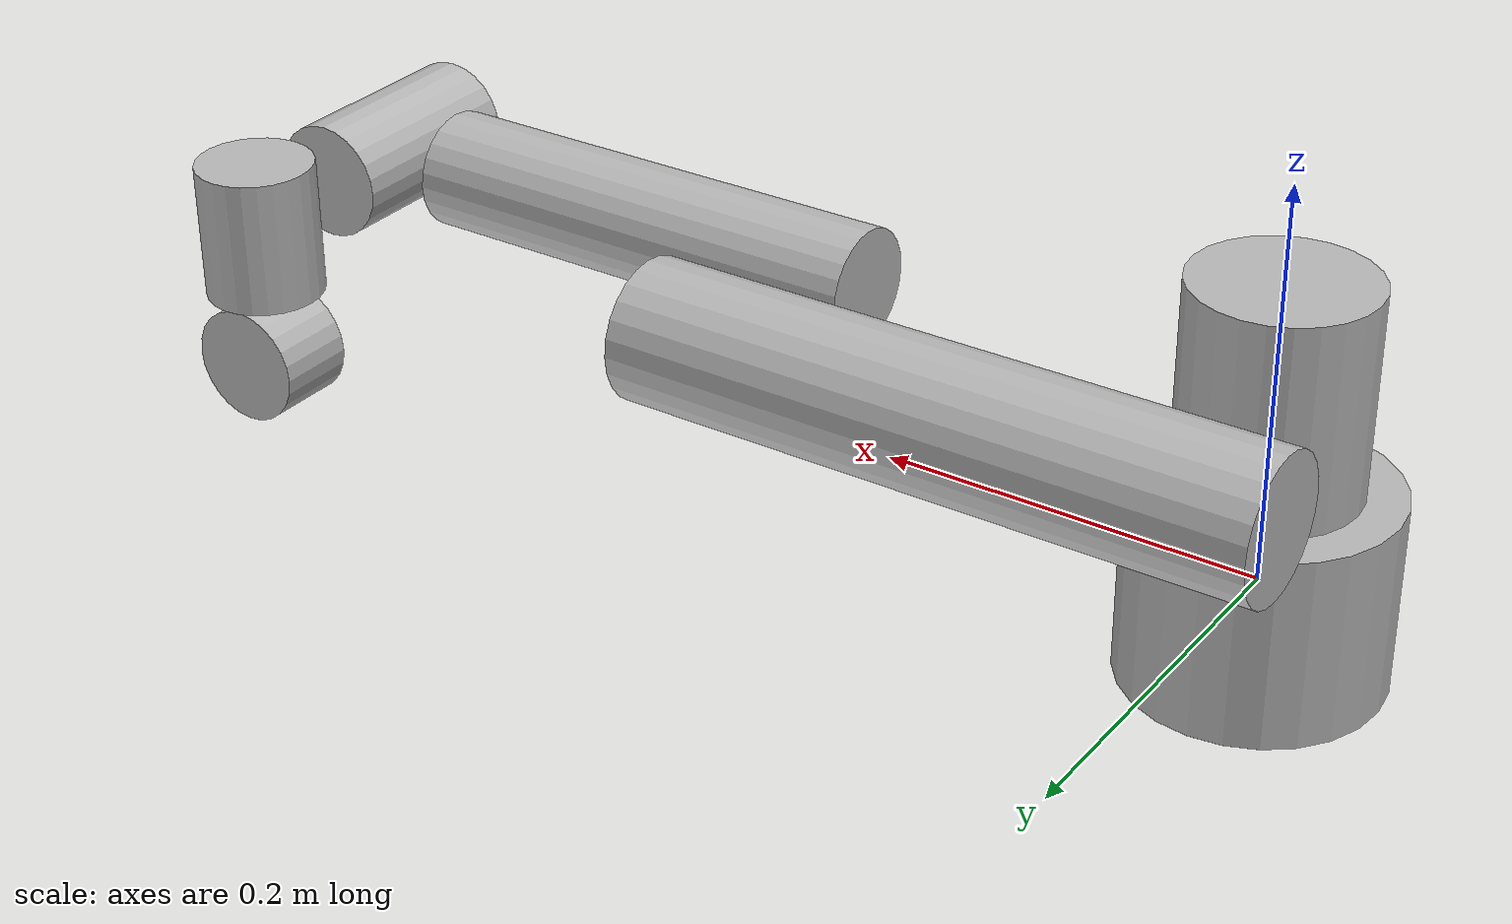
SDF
<sdf version="1.6">
		<model name="ur3e_gripper">
			<self_collide>true</self_collide>
			<pose>0.0 0.0 0.0 0.0 0.0 0.0</pose>

			<link name="1-base_link">
					<pose>0.0 0.0 0.0 0.0 0.0 3.1414999961853027</pose>
					<inertial>
						<pose>0.0 0.0 0.0 0.0 0.0 0.0</pose>
						<inertia>
							<ixx>1.0</ixx>
							<ixy>0.0</ixy>
							<ixz>0.0</ixz>
							<iyy>1.0</iyy>
							<iyz>0.0</iyz>
							<izz>1.0</izz>
						</inertia>
						<mass>2.4000000953674316</mass>
					</inertial>

					<collision name="1--base_link_collision">
						<laser_retro>0.0</laser_retro>
						<pose>0.0 0.0 0.0 0.0 0.0 0.0</pose>
						<geometry>
							<cylinder>
								<radius>0.06499999761581421</radius>
								<length>0.09880000352859497</length>
							</cylinder>
						</geometry>
						</collision>
					<visual name="1--base_link_collision">
						<laser_retro>0.0</laser_retro>
						<pose>0.0 0.0 0.0 0.0 0.0 0.0</pose>
						<geometry>
							<cylinder>
								<radius>0.06499999761581421</radius>
								<length>0.09880000352859497</length>
							</cylinder>
						</geometry>
						</visual>
					 If you wish to reflect these aspects in SDF,
					     please add an appropriate annotation to the sensor. --&gt;
					 If you wish to reflect these aspects in SDF,
					     please add an appropriate annotation to the sensor. --&gt;
					 If you wish to reflect these aspects in SDF,
					     please add an appropriate annotation to the sensor. --&gt;
					 If you wish to reflect these aspects in SDF,
					     please add an appropriate annotation to the sensor. --&gt;
			</link>

			<link name="2-shoulder_link">
					<pose>0.0 0.0 0.09880000352859497 0.0 0.0 0.0</pose>
					<inertial>
						<pose>0.0 0.0 -0.019999999552965164 0.0 0.0 0.0</pose>
						<inertia>
							<ixx>1.0</ixx>
							<ixy>0.0</ixy>
							<ixz>0.0</ixz>
							<iyy>1.0</iyy>
							<iyz>0.0</iyz>
							<izz>1.0</izz>
						</inertia>
						<mass>1.9800000190734863</mass>
					</inertial>

					<collision name="2--shoulder_link_collision">
						<laser_retro>0.0</laser_retro>
						<pose>0.0 0.0 0.0030999965965747833 0.0 0.0 1.5707499980926514</pose>
						<geometry>
							<cylinder>
								<radius>0.04500000178813934</radius>
								<length>0.10499999672174454</length>
							</cylinder>
						</geometry>
						</collision>
					<visual name="2--shoulder_link_collision">
						<laser_retro>0.0</laser_retro>
						<pose>0.0 0.0 0.0030999965965747833 0.0 0.0 1.5707499980926514</pose>
						<geometry>
							<cylinder>
								<radius>0.04500000178813934</radius>
								<length>0.10499999672174454</length>
							</cylinder>
						</geometry>
						</visual>
					 If you wish to reflect these aspects in SDF,
					     please add an appropriate annotation to the sensor. --&gt;
					 If you wish to reflect these aspects in SDF,
					     please add an appropriate annotation to the sensor. --&gt;
					 If you wish to reflect these aspects in SDF,
					     please add an appropriate annotation to the sensor. --&gt;
					 If you wish to reflect these aspects in SDF,
					     please add an appropriate annotation to the sensor. --&gt;
			</link>

			<link name="3-upper_arm_link">
					<pose>0.0 0.10499999672174454 0.09880000352859497 3.1414999961853027 1.5707499980926514 3.1414999961853027</pose>
					<inertial>
						<pose>0.12999999523162842 0.0 0.11569999903440475 0.0 0.0 0.0</pose>
						<inertia>
							<ixx>1.0</ixx>
							<ixy>0.0</ixy>
							<ixz>0.0</ixz>
							<iyy>1.0</iyy>
							<iyz>0.0</iyz>
							<izz>1.0</izz>
						</inertia>
						<mass>3.444499969482422</mass>
					</inertial>

					<collision name="3--upper_arm_link_collision">
						<laser_retro>0.0</laser_retro>
						<pose>0.0 0.0 0.10749999806284904 0.0 0.0 0.0</pose>
						<geometry>
							<cylinder>
								<radius>0.03500000014901161</radius>
								<length>0.3199999928474426</length>
							</cylinder>
						</geometry>
						</collision>
					<visual name="3--upper_arm_link_collision">
						<laser_retro>0.0</laser_retro>
						<pose>0.0 0.0 0.10749999806284904 0.0 0.0 0.0</pose>
						<geometry>
							<cylinder>
								<radius>0.03500000014901161</radius>
								<length>0.3199999928474426</length>
							</cylinder>
						</geometry>
						</visual>
					 If you wish to reflect these aspects in SDF,
					     please add an appropriate annotation to the sensor. --&gt;
					 If you wish to reflect these aspects in SDF,
					     please add an appropriate annotation to the sensor. --&gt;
					 If you wish to reflect these aspects in SDF,
					     please add an appropriate annotation to the sensor. --&gt;
					 If you wish to reflect these aspects in SDF,
					     please add an appropriate annotation to the sensor. --&gt;
			</link>

			<link name="4-forearm_link">
					<pose>0.2199999913573265 0.01499999314546585 0.09880000352859497 3.1414999961853027 1.5707499980926514 3.1414999961853027</pose>
					<inertial>
						<pose>0.0 0.0 0.0 0.0 0.0 0.0</pose>
						<inertia>
							<ixx>1.0</ixx>
							<ixy>0.0</ixy>
							<ixz>0.0</ixz>
							<iyy>1.0</iyy>
							<iyz>0.0</iyz>
							<izz>1.0</izz>
						</inertia>
						<mass>1.437000036239624</mass>
					</inertial>

					<collision name="4--forearm_link_collision">
						<laser_retro>0.0</laser_retro>
						<pose>0.0 0.0 0.1100000012665987 0.0 0.0 0.0</pose>
						<geometry>
							<cylinder>
								<radius>0.029999999329447746</radius>
								<length>0.25000000186264515</length>
							</cylinder>
						</geometry>
						</collision>
					<visual name="4--forearm_link_collision">
						<laser_retro>0.0</laser_retro>
						<pose>0.0 0.0 0.1100000012665987 0.0 0.0 0.0</pose>
						<geometry>
							<cylinder>
								<radius>0.029999999329447746</radius>
								<length>0.25000000186264515</length>
							</cylinder>
						</geometry>
						</visual>
					 If you wish to reflect these aspects in SDF,
					     please add an appropriate annotation to the sensor. --&gt;
					 If you wish to reflect these aspects in SDF,
					     please add an appropriate annotation to the sensor. --&gt;
					 If you wish to reflect these aspects in SDF,
					     please add an appropriate annotation to the sensor. --&gt;
					 If you wish to reflect these aspects in SDF,
					     please add an appropriate annotation to the sensor. --&gt;
			</link>

			<link name="5-wrist_1_link">
					<pose>0.4999999925494194 0.01499999314546585 0.09880000352859497 3.1414999961853027 0.0 3.1414999961853027</pose>
					<inertial>
						<pose>0.0 0.0 0.0 0.0 0.0 0.0</pose>
						<inertia>
							<ixx>1.0</ixx>
							<ixy>0.0</ixy>
							<ixz>0.0</ixz>
							<iyy>1.0</iyy>
							<iyz>0.0</iyz>
							<izz>1.0</izz>
						</inertia>
						<mass>0.8709999918937683</mass>
					</inertial>

					<collision name="5--wrist_1_link_collision">
						<laser_retro>0.0</laser_retro>
						<pose>0.0 0.0 0.0 1.5707499980926514 0.0 0.0</pose>
						<geometry>
							<cylinder>
								<radius>0.029999999329447746</radius>
								<length>0.10199999809265137</length>
							</cylinder>
						</geometry>
						</collision>
					<visual name="5--wrist_1_link_collision">
						<laser_retro>0.0</laser_retro>
						<pose>0.0 0.0 0.0 1.5707499980926514 0.0 0.0</pose>
						<geometry>
							<cylinder>
								<radius>0.029999999329447746</radius>
								<length>0.10199999809265137</length>
							</cylinder>
						</geometry>
						</visual>
					 If you wish to reflect these aspects in SDF,
					     please add an appropriate annotation to the sensor. --&gt;
					 If you wish to reflect these aspects in SDF,
					     please add an appropriate annotation to the sensor. --&gt;
					 If you wish to reflect these aspects in SDF,
					     please add an appropriate annotation to the sensor. --&gt;
					 If you wish to reflect these aspects in SDF,
					     please add an appropriate annotation to the sensor. --&gt;
			</link>

			<link name="6-wrist_2_link">
					<pose>0.4999999925494194 0.11699999123811722 0.09880000352859497 3.1414999961853027 0.0 3.1414999961853027</pose>
					<inertial>
						<pose>0.0 0.0 0.0 0.0 0.0 0.0</pose>
						<inertia>
							<ixx>1.0</ixx>
							<ixy>0.0</ixy>
							<ixz>0.0</ixz>
							<iyy>1.0</iyy>
							<iyz>0.0</iyz>
							<izz>1.0</izz>
						</inertia>
						<mass>0.8050000071525574</mass>
					</inertial>

					<collision name="6--wrist_2_link_collision">
						<laser_retro>0.0</laser_retro>
						<pose>0.0 0.0 0.005000000819563866 0.0 0.0 0.0</pose>
						<geometry>
							<cylinder>
								<radius>0.029999999329447746</radius>
								<length>0.07000000029802322</length>
							</cylinder>
						</geometry>
						</collision>
					<visual name="6--wrist_2_link_collision">
						<laser_retro>0.0</laser_retro>
						<pose>0.0 0.0 0.005000000819563866 0.0 0.0 0.0</pose>
						<geometry>
							<cylinder>
								<radius>0.029999999329447746</radius>
								<length>0.07000000029802322</length>
							</cylinder>
						</geometry>
						</visual>
					 If you wish to reflect these aspects in SDF,
					     please add an appropriate annotation to the sensor. --&gt;
					 If you wish to reflect these aspects in SDF,
					     please add an appropriate annotation to the sensor. --&gt;
					 If you wish to reflect these aspects in SDF,
					     please add an appropriate annotation to the sensor. --&gt;
					 If you wish to reflect these aspects in SDF,
					     please add an appropriate annotation to the sensor. --&gt;
			</link>

			<link name="7-wrist_3_link">
					<pose>0.4999999925494194 0.11699999123811722 0.028800003230571747 3.1414999961853027 0.0 3.1414999961853027</pose>
					<inertial>
						<pose>0.0 0.0 0.0 0.0 0.0 0.0</pose>
						<inertia>
							<ixx>1.0</ixx>
							<ixy>0.0</ixy>
							<ixz>0.0</ixz>
							<iyy>1.0</iyy>
							<iyz>0.0</iyz>
							<izz>1.0</izz>
						</inertia>
						<mass>0.26100000739097595</mass>
					</inertial>

					<collision name="7--wrist_3_link_collision">
						<laser_retro>0.0</laser_retro>
						<pose>0.0 0.0 0.005500000901520252 1.5707499980926514 0.0 0.0</pose>
						<geometry>
							<cylinder>
								<radius>0.029999999329447746</radius>
								<length>0.04100000113248825</length>
							</cylinder>
						</geometry>
						</collision>
					<visual name="7--wrist_3_link_collision">
						<laser_retro>0.0</laser_retro>
						<pose>0.0 0.0 0.005500000901520252 1.5707499980926514 0.0 0.0</pose>
						<geometry>
							<cylinder>
								<radius>0.029999999329447746</radius>
								<length>0.04100000113248825</length>
							</cylinder>
						</geometry>
						</visual>
			</link>

			<joint name="8-wrist_3_joint" type="revolute">
				<pose>5.551115123125783E-17 0.03000648534778043 3.004888109170434E-10 0.0 1.6543612251060553E-24 0.0</pose>
				<parent>6-wrist_2_link</parent>
				<child>7-wrist_3_link</child>

				<axis>
					<xyz>0 1 0</xyz>
					<dynamics>
						<damping>10</damping>
					</dynamics>
					<limit>
						<lower>-6.2829999923706055</lower>
						<upper>6.2829999923706055</upper>
						<velocity>1.5707499980926514</velocity>
						<effort>1000</effort>
					</limit>
				</axis>

			</joint>

			<joint name="9-wrist_2_joint" type="revolute">
				<pose>-9.451055067721814E-6 8.757102265555261E-10 0.029990548274420548 0.0 1.6543612251060553E-24 0.0</pose>
				<parent>5-wrist_1_link</parent>
				<child>6-wrist_2_link</child>

				<axis>
					<xyz>0 0 -1</xyz>
					<dynamics>
						<damping>10</damping>
					</dynamics>
					<limit>
						<lower>-6.2829999923706055</lower>
						<upper>6.2829999923706055</upper>
						<velocity>1.5707499980926514</velocity>
						<effort>1000</effort>
					</limit>
				</axis>

			</joint>

			<joint name="10-shoulder_pan_joint" type="revolute">
				<pose>0.0 0.0 0.0 0.0 -0.0 3.1414999961853027</pose>
				<parent>1-base_link</parent>
				<child>2-shoulder_link</child>

				<axis>
					<xyz>0 0 1</xyz>
					<dynamics>
						<damping>10</damping>
					</dynamics>
					<limit>
						<lower>-6.2829999923706055</lower>
						<upper>6.2829999923706055</upper>
						<velocity>1.5707499980926514</velocity>
						<effort>1000</effort>
					</limit>
				</axis>

			</joint>

			<joint name="11-shoulder_lift_joint" type="revolute">
				<pose>-2.5756181909475373E-10 -0.05999999493360519 -5.966252746838693E-15 3.1415926514434447 -1.5707499980928503 3.1415926514434447</pose>
				<parent>2-shoulder_link</parent>
				<child>3-upper_arm_link</child>

				<axis>
					<xyz>0 1 0</xyz>
					<dynamics>
						<damping>10</damping>
					</dynamics>
					<limit>
						<lower>-6.2829999923706055</lower>
						<upper>6.2829999923706055</upper>
						<velocity>1.5707499980926514</velocity>
						<effort>1000</effort>
					</limit>
				</axis>

			</joint>

			<joint name="12-wrist_1_joint" type="revolute">
				<pose>3.004888005087025E-10 -1.201955245402897E-9 1.2972036567901468E-5 1.1070560616774092 -1.5706927326673965 -1.107148716935551</pose>
				<parent>4-forearm_link</parent>
				<child>5-wrist_1_link</child>

				<axis>
					<xyz>0 1 0</xyz>
					<dynamics>
						<damping>10</damping>
					</dynamics>
					<limit>
						<lower>-6.2829999923706055</lower>
						<upper>6.2829999923706055</upper>
						<velocity>1.5707499980926514</velocity>
						<effort>1000</effort>
					</limit>
				</axis>

			</joint>

			<joint name="13-elbow_joint" type="revolute">
				<pose>1.0192700388933496E-5 0.055000003427245196 0.009999998149944705 2.0517283354985477E-21 -0.0 0.0</pose>
				<parent>3-upper_arm_link</parent>
				<child>4-forearm_link</child>

				<axis>
					<xyz>0 1 0</xyz>
					<dynamics>
						<damping>10</damping>
					</dynamics>
					<limit>
						<lower>-6.2829999923706055</lower>
						<upper>6.2829999923706055</upper>
						<velocity>1.5707499980926514</velocity>
						<effort>1000</effort>
					</limit>
				</axis>

			</joint>

		</model>
</sdf>
